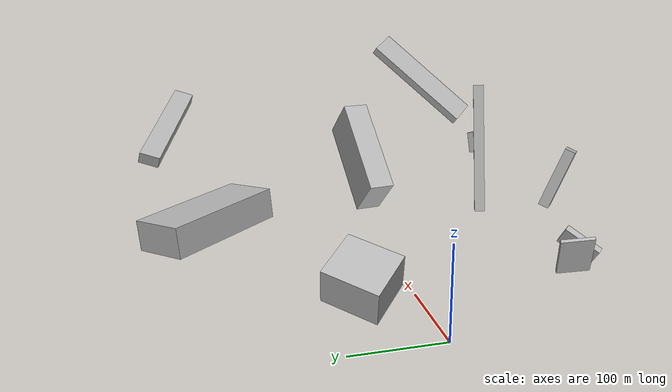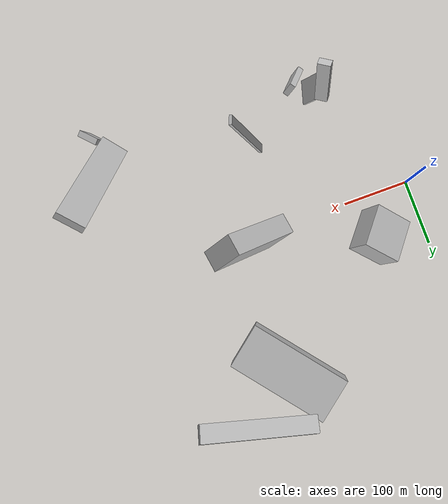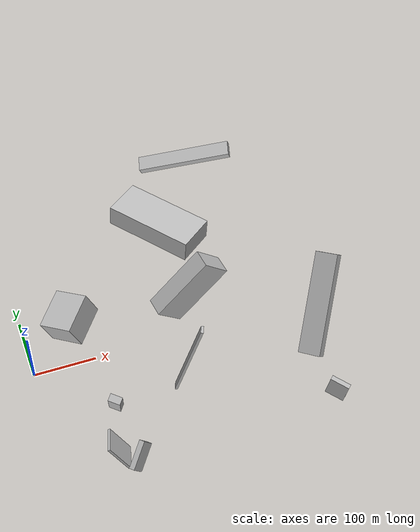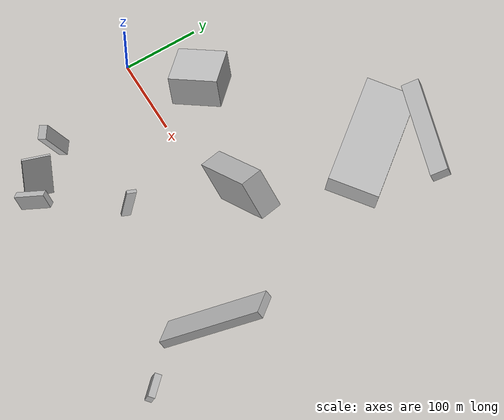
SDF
<sdf version="1.6">
 <world name="default">
  <scene>
   <sky><clouds><speed>12</speed></clouds></sky>
   <ambient>0.4 0.4 0.4 1</ambient>
   <background>0.7 0.7 0.7 1</background>
   <shadows>1</shadows>
  </scene>
  <gravity>0 0 -9.8066</gravity>
  <magnetic_field>6e-06 2.3e-05 -4.2e-05</magnetic_field>
  <physics default="0" name="default_physics" type="ode">
   <ode>
    <solver>
     <type>quick</type>
     <iters>10</iters>
     <sor>1.0</sor>
     <use_dynamic_moi_rescaling>0</use_dynamic_moi_rescaling>
    </solver>
    <constraints>
     <cfm>0</cfm>
     <erp>0.2</erp>
     <contact_max_correcting_vel>100</contact_max_correcting_vel>
     <contact_surface_layer>0.001</contact_surface_layer>
    </constraints>
   </ode>
   <max_step_size>0.004</max_step_size>
   <real_time_factor>1</real_time_factor>
   <real_time_update_rate>250</real_time_update_rate>
  </physics>
  <light name="sun" type="directional">
   <pose>0 0 10 0 0 0</pose>
   <diffuse>0.8 0.8 0.8 1</diffuse>
   <specular>0.2 0.2 0.2 1</specular>
   <attenuation>
    <range>1000</range>
    <constant>0.9</constant>
    <linear>0.01</linear>
    <quadratic>0.001</quadratic>
   </attenuation>
   <direction>-0.5 0.1 -0.9</direction>
  </light>
  <model name="building_1">
   <static>0</static>
   <pose>97.0049902047429 87.97396753525003 43.817350164113215 -2.099931663559249 -1.1719541221701 2.9311523505734876</pose>
   <link name="link">
    <gravity>0</gravity>
    <pose>0 0 32.0 0 0 0</pose>
    <collision name="collision"><geometry><box><size>43 58 64</size></box></geometry></collision>
    <visual name="visual">
     <cast_shadows>0</cast_shadows>
     <geometry><box><size>43 58 64</size></box></geometry>
     <material>
      <script>
       <uri>model://HANNAS_wall/materials/scripts</uri>
       <uri>model://HANNAS_wall/materials/textures</uri>
       <name>vrc/HANNAS_wall</name>
      </script>
     </material>
    </visual>
   </link>
  </model>
  <model name="building_2">
   <static>0</static>
   <pose>277.78162414369046 18.689651232226467 87.68522928533027 0.022871803318835596 -0.774038814267074 0.14127966169846723</pose>
   <link name="link">
    <gravity>0</gravity>
    <pose>0 0 27.0 0 0 0</pose>
    <collision name="collision"><geometry><box><size>112 29 54</size></box></geometry></collision>
    <visual name="visual">
     <cast_shadows>0</cast_shadows>
     <geometry><box><size>112 29 54</size></box></geometry>
     <material>
      <script>
       <uri>model://HANNAS_wall/materials/scripts</uri>
       <uri>model://HANNAS_wall/materials/textures</uri>
       <name>vrc/HANNAS_wall</name>
      </script>
     </material>
    </visual>
   </link>
  </model>
  <model name="building_3">
   <static>0</static>
   <pose>386.8228674751275 -164.44433796538175 117.3895603863641 0.8319972879176101 0.3694373700284965 2.291052694093036</pose>
   <link name="link">
    <gravity>0</gravity>
    <pose>0 0 75.0 0 0 0</pose>
    <collision name="collision"><geometry><box><size>36 11 150</size></box></geometry></collision>
    <visual name="visual">
     <cast_shadows>0</cast_shadows>
     <geometry><box><size>36 11 150</size></box></geometry>
     <material>
      <script>
       <uri>model://HANNAS_wall/materials/scripts</uri>
       <uri>model://HANNAS_wall/materials/textures</uri>
       <name>vrc/HANNAS_wall</name>
      </script>
     </material>
    </visual>
   </link>
  </model>
  <model name="building_4">
   <static>0</static>
   <pose>242.82154049763895 180.5559959511814 45.22162200430897 1.672014889072416 0.017321352412730674 2.25324754032481</pose>
   <link name="link">
    <gravity>0</gravity>
    <pose>0 0 33.5 0 0 0</pose>
    <collision name="collision"><geometry><box><size>150 36 67</size></box></geometry></collision>
    <visual name="visual">
     <cast_shadows>0</cast_shadows>
     <geometry><box><size>150 36 67</size></box></geometry>
     <material>
      <script>
       <uri>model://HANNAS_wall/materials/scripts</uri>
       <uri>model://HANNAS_wall/materials/textures</uri>
       <name>vrc/HANNAS_wall</name>
      </script>
     </material>
    </visual>
   </link>
  </model>
  <model name="building_5">
   <static>0</static>
   <pose>107.75004925706381 -201.57990691515235 38.21431979823578 2.6160340634652184 0.28097961741818783 2.2692208370579996</pose>
   <link name="link">
    <gravity>0</gravity>
    <pose>0 0 11.0 0 0 0</pose>
    <collision name="collision"><geometry><box><size>9 44 22</size></box></geometry></collision>
    <visual name="visual">
     <cast_shadows>0</cast_shadows>
     <geometry><box><size>9 44 22</size></box></geometry>
     <material>
      <script>
       <uri>model://HANNAS_wall/materials/scripts</uri>
       <uri>model://HANNAS_wall/materials/textures</uri>
       <name>vrc/HANNAS_wall</name>
      </script>
     </material>
    </visual>
   </link>
  </model>
  <model name="building_6">
   <static>0</static>
   <pose>328.9357772885026 250.36482357999193 145.91674971051052 2.403953945497771 1.1567902243617685 0.5477324280458117</pose>
   <link name="link">
    <gravity>0</gravity>
    <pose>0 0 11.5 0 0 0</pose>
    <collision name="collision"><geometry><box><size>13 150 23</size></box></geometry></collision>
    <visual name="visual">
     <cast_shadows>0</cast_shadows>
     <geometry><box><size>13 150 23</size></box></geometry>
     <material>
      <script>
       <uri>model://HANNAS_wall/materials/scripts</uri>
       <uri>model://HANNAS_wall/materials/textures</uri>
       <name>vrc/HANNAS_wall</name>
      </script>
     </material>
    </visual>
   </link>
  </model>
  <model name="building_7">
   <static>0</static>
   <pose>416.78724686314973 -206.77865639348477 67.18795102419413 -1.7936872803382542 0.11917351468200364 -0.8212628875449766</pose>
   <link name="link">
    <gravity>0</gravity>
    <pose>0 0 4.5 0 0 0</pose>
    <collision name="collision"><geometry><box><size>30 29 9</size></box></geometry></collision>
    <visual name="visual">
     <cast_shadows>0</cast_shadows>
     <geometry><box><size>30 29 9</size></box></geometry>
     <material>
      <script>
       <uri>model://HANNAS_wall/materials/scripts</uri>
       <uri>model://HANNAS_wall/materials/textures</uri>
       <name>vrc/HANNAS_wall</name>
      </script>
     </material>
    </visual>
   </link>
  </model>
  <model name="building_8">
   <static>0</static>
   <pose>90.62291178975549 -158.0328881080738 117.65183588968263 -0.43107652218581677 -1.1918710143116404 -1.8082589676988532</pose>
   <link name="link">
    <gravity>0</gravity>
    <pose>0 0 5.5 0 0 0</pose>
    <collision name="collision"><geometry><box><size>65 18 11</size></box></geometry></collision>
    <visual name="visual">
     <cast_shadows>0</cast_shadows>
     <geometry><box><size>65 18 11</size></box></geometry>
     <material>
      <script>
       <uri>model://HANNAS_wall/materials/scripts</uri>
       <uri>model://HANNAS_wall/materials/textures</uri>
       <name>vrc/HANNAS_wall</name>
      </script>
     </material>
    </visual>
   </link>
  </model>
  <model name="building_9">
   <static>0</static>
   <pose>92.40918857065424 -162.0143778116849 27.56136907447012 -1.354327959260428 -1.0368733945161068 2.6870156454376866</pose>
   <link name="link">
    <gravity>0</gravity>
    <pose>0 0 18.5 0 0 0</pose>
    <collision name="collision"><geometry><box><size>57 4 37</size></box></geometry></collision>
    <visual name="visual">
     <cast_shadows>0</cast_shadows>
     <geometry><box><size>57 4 37</size></box></geometry>
     <material>
      <script>
       <uri>model://HANNAS_wall/materials/scripts</uri>
       <uri>model://HANNAS_wall/materials/textures</uri>
       <name>vrc/HANNAS_wall</name>
      </script>
     </material>
    </visual>
   </link>
  </model>
  <model name="building_10">
   <static>0</static>
   <pose>217.1331769648724 -118.24084357954519 119.46660333768719 1.3268799509406424 -0.04804732785222749 -1.9468620638116028</pose>
   <link name="link">
    <gravity>0</gravity>
    <pose>0 0 2.0 0 0 0</pose>
    <collision name="collision"><geometry><box><size>12 150 4</size></box></geometry></collision>
    <visual name="visual">
     <cast_shadows>0</cast_shadows>
     <geometry><box><size>12 150 4</size></box></geometry>
     <material>
      <script>
       <uri>model://HANNAS_wall/materials/scripts</uri>
       <uri>model://HANNAS_wall/materials/textures</uri>
       <name>vrc/HANNAS_wall</name>
      </script>
     </material>
    </visual>
   </link>
  </model>
 </world>
</sdf>
